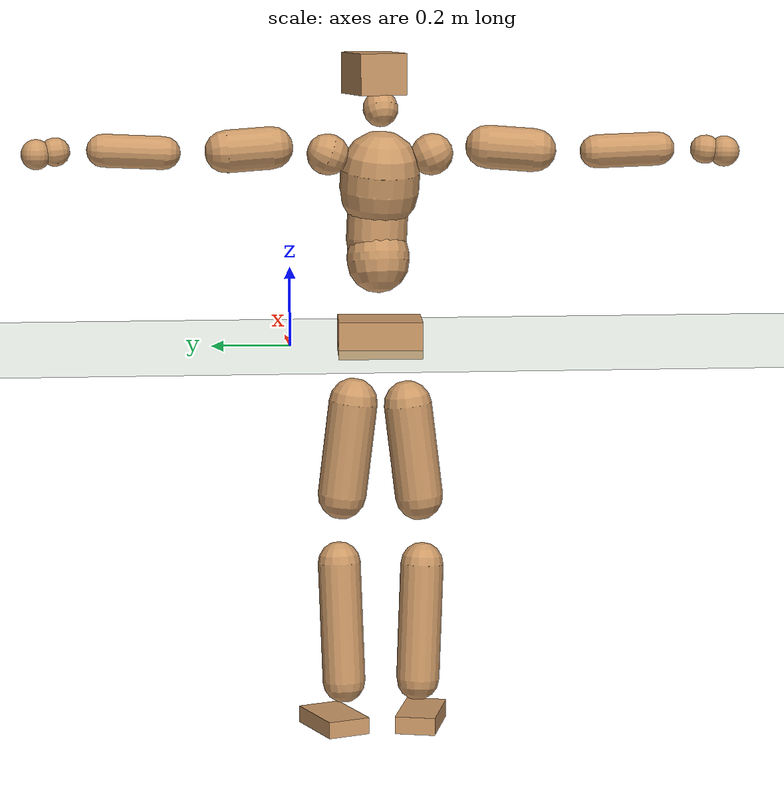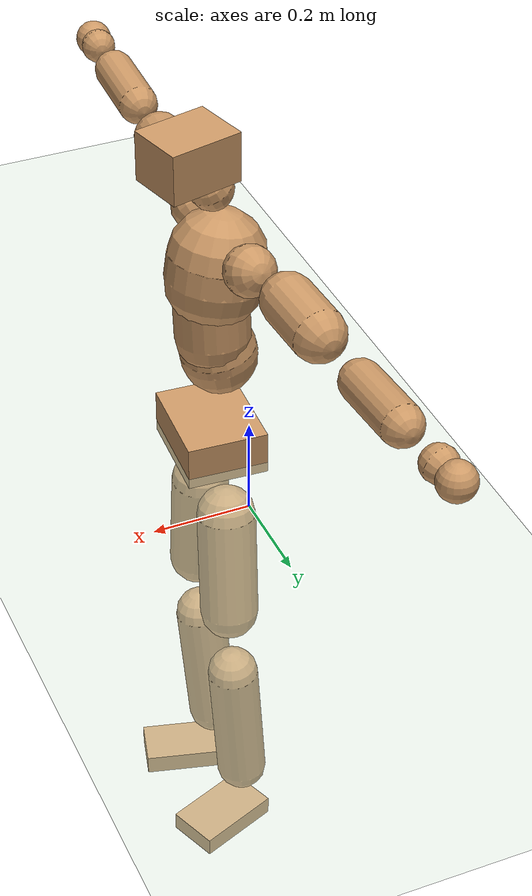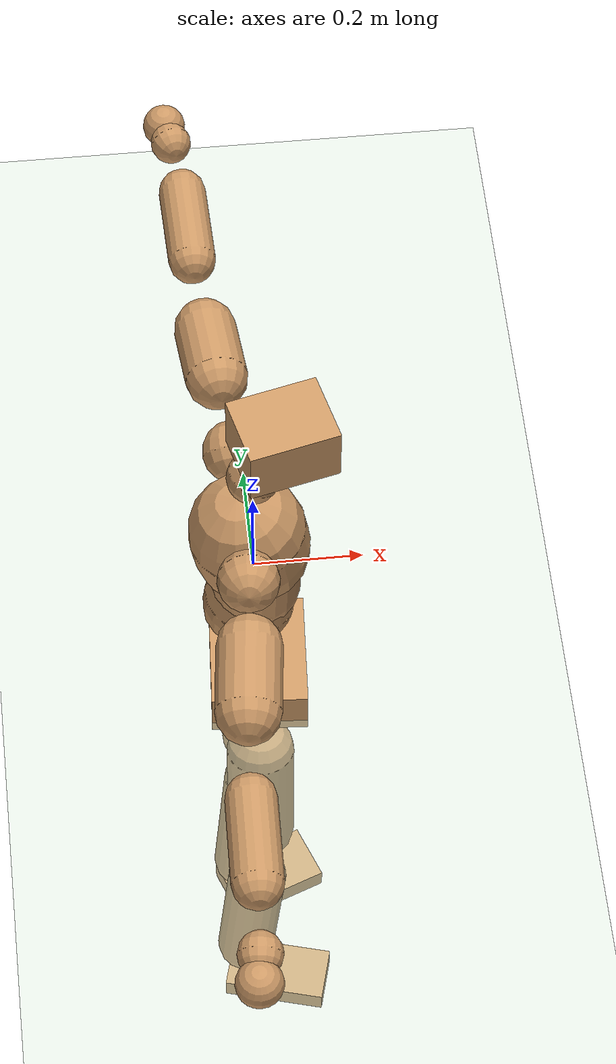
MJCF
<mujoco model="humanoid">
  <compiler coordinate="local" angle="radian"/>
  <default>
    <joint damping="0.0" armature="0.01" stiffness="0.0" limited="true"/>
    <geom conaffinity="1" condim="3" contype="7" margin="0.001" rgba="0.8 0.6 .4 1"/>
  </default>
  <asset>
    <texture type="skybox" builtin="gradient" rgb1=".4 .5 .6" rgb2="0 0 0" width="100" height="100"/>
    <texture builtin="flat" height="1278" mark="cross" markrgb="1 1 1" name="texgeom" random="0.01" rgb1="0.8 0.6 0.4" rgb2="0.8 0.6 0.4" type="cube" width="127"/>
    <texture builtin="checker" height="100" name="texplane" rgb1="0 0 0" rgb2="0.8 0.8 0.8" type="2d" width="100"/>
    <material name="MatPlane" reflectance="0.5" shininess="1" specular="1" texrepeat="60 60" texture="texplane"/>
    <material name="geom" texture="texgeom" texuniform="true"/>
  </asset>
  <worldbody>
    <light cutoff="100" diffuse="1 1 1" dir="-0 0 -1.3" directional="true" exponent="1" pos="0 0 1.3" specular=".1 .1 .1"/>
    <geom conaffinity="1" condim="3" name="floor" pos="0 0 0" rgba="0.8 0.9 0.8 1" size="100 100 .2" type="plane" material="MatPlane"/>
    <body name="Pelvis" pos="-0.0018 -0.2277 0.0297">
      <freejoint name="Pelvis"/>
      <geom type="box" contype="1" conaffinity="1" density="5359.374906" pos="-0.0117 0.0007 -0.0082" size="0.0842 0.1057 0.0466" quat="0.9996 0.0000 0.0000 -0.0296" name="Pelvis"/>
      <body name="L_Hip" pos="-0.0173 0.0584 -0.0835">
        <joint name="L_Hip_x" type="hinge" pos="0 0 0" axis="1 0 0" stiffness="1600" damping="160" armature="0.02" range="-180.0000 180.0000"/>
        <joint name="L_Hip_y" type="hinge" pos="0 0 0" axis="0 1 0" stiffness="1600" damping="160" armature="0.02" range="-180.0000 180.0000"/>
        <joint name="L_Hip_z" type="hinge" pos="0 0 0" axis="0 0 1" stiffness="1600" damping="160" armature="0.02" range="-180.0000 180.0000"/>
        <geom type="capsule" contype="1" conaffinity="1" density="2040.816327" size="0.0617" fromto="0.0024 0.0108 -0.0911 0.0089 0.0393 -0.3322" name="L_Hip"/>
        <body name="L_Knee" pos="0.0113 0.0501 -0.4232">
          <joint name="L_Knee_x" type="hinge" pos="0 0 0" axis="1 0 0" stiffness="1600" damping="160" armature="0.02" range="-180.0000 180.0000"/>
          <joint name="L_Knee_y" type="hinge" pos="0 0 0" axis="0 1 0" stiffness="1600" damping="160" armature="0.02" range="-180.0000 180.0000"/>
          <joint name="L_Knee_z" type="hinge" pos="0 0 0" axis="0 0 1" stiffness="1600" damping="160" armature="0.02" range="-180.0000 180.0000"/>
          <geom type="capsule" contype="1" conaffinity="1" density="1234.567901" size="0.0545" fromto="-0.0065 -0.0027 -0.0842 -0.0303 -0.0125 -0.3907" name="L_Knee"/>
          <body name="L_Ankle" pos="-0.0368 -0.0152 -0.4749">
            <joint name="L_Ankle_x" type="hinge" pos="0 0 0" axis="1 0 0" stiffness="1600" damping="160" armature="0.02" range="-180.0000 180.0000"/>
            <joint name="L_Ankle_y" type="hinge" pos="0 0 0" axis="0 1 0" stiffness="1600" damping="160" armature="0.02" range="-180.0000 180.0000"/>
            <joint name="L_Ankle_z" type="hinge" pos="0 0 0" axis="0 0 1" stiffness="1600" damping="160" armature="0.02" range="-180.0000 180.0000"/>
            <geom type="box" contype="1" conaffinity="1" density="999.999981" pos="0.0638 0.0245 -0.0328" size="0.0925 0.0562 0.0215" quat="0.9833 0.0000 0.0000 0.1821" name="L_Ankle"/>
            <body name="L_Toe" pos="0.1276 0.0489 -0.0656">
              <joint name="L_Toe_x" type="hinge" pos="0 0 0" axis="1 0 0" stiffness="1000" damping="100" armature="0.02" range="-180.0000 180.0000"/>
              <joint name="L_Toe_y" type="hinge" pos="0 0 0" axis="0 1 0" stiffness="1000" damping="100" armature="0.02" range="-180.0000 180.0000"/>
              <joint name="L_Toe_z" type="hinge" pos="0 0 0" axis="0 0 1" stiffness="1000" damping="100" armature="0.02" range="-180.0000 180.0000"/>
              <geom type="box" contype="1" conaffinity="1" density="8031442.561753" pos="0.0000 0.0000 0.0330" size="0.0011 0.0026 0.0011" quat="0.9825 0.0000 0.0000 0.1861" name="L_Toe"/>
            </body>
          </body>
        </body>
      </body>
      <body name="R_Hip" pos="-0.0132 -0.0592 -0.0925">
        <joint name="R_Hip_x" type="hinge" pos="0 0 0" axis="1 0 0" stiffness="1600" damping="160" armature="0.02" range="-180.0000 180.0000"/>
        <joint name="R_Hip_y" type="hinge" pos="0 0 0" axis="0 1 0" stiffness="1600" damping="160" armature="0.02" range="-180.0000 180.0000"/>
        <joint name="R_Hip_z" type="hinge" pos="0 0 0" axis="0 0 1" stiffness="1600" damping="160" armature="0.02" range="-180.0000 180.0000"/>
        <geom type="capsule" contype="1" conaffinity="1" density="2040.816327" size="0.0609" fromto="-0.0008 -0.0110 -0.0902 -0.0031 -0.0398 -0.3278" name="R_Hip"/>
        <body name="R_Knee" pos="-0.0039 -0.0507 -0.418">
          <joint name="R_Knee_x" type="hinge" pos="0 0 0" axis="1 0 0" stiffness="1600" damping="160" armature="0.02" range="-180.0000 180.0000"/>
          <joint name="R_Knee_y" type="hinge" pos="0 0 0" axis="0 1 0" stiffness="1600" damping="160" armature="0.02" range="-180.0000 180.0000"/>
          <joint name="R_Knee_z" type="hinge" pos="0 0 0" axis="0 0 1" stiffness="1600" damping="160" armature="0.02" range="-180.0000 180.0000"/>
          <geom type="capsule" contype="1" conaffinity="1" density="1234.567901" size="0.0549" fromto="-0.0063 0.0036 -0.0846 -0.0283 0.0163 -0.3818" name="R_Knee"/>
          <body name="R_Ankle" pos="-0.0346 0.02 -0.4664">
            <joint name="R_Ankle_x" type="hinge" pos="0 0 0" axis="1 0 0" stiffness="1600" damping="160" armature="0.02" range="-180.0000 180.0000"/>
            <joint name="R_Ankle_y" type="hinge" pos="0 0 0" axis="0 1 0" stiffness="1600" damping="160" armature="0.02" range="-180.0000 180.0000"/>
            <joint name="R_Ankle_z" type="hinge" pos="0 0 0" axis="0 0 1" stiffness="1600" damping="160" armature="0.02" range="-180.0000 180.0000"/>
            <geom type="box" contype="1" conaffinity="1" density="999.999975" pos="0.0688 -0.0185 -0.0334" size="0.0969 0.0519 0.0226" quat="0.9914 0.0000 0.0000 -0.1312" name="R_Ankle"/>
            <body name="R_Toe" pos="0.1377 -0.0371 -0.0667">
              <joint name="R_Toe_x" type="hinge" pos="0 0 0" axis="1 0 0" stiffness="1000" damping="100" armature="0.02" range="-180.0000 180.0000"/>
              <joint name="R_Toe_y" type="hinge" pos="0 0 0" axis="0 1 0" stiffness="1000" damping="100" armature="0.02" range="-180.0000 180.0000"/>
              <joint name="R_Toe_z" type="hinge" pos="0 0 0" axis="0 0 1" stiffness="1000" damping="100" armature="0.02" range="-180.0000 180.0000"/>
              <geom type="box" contype="1" conaffinity="1" density="8676836.118261" pos="0.0000 0.0000 0.0334" size="0.001 0.0025 0.0011" quat="0.9924 0.0000 0.0000 -0.1228" name="R_Toe"/>
            </body>
          </body>
        </body>
      </body>
      <body name="Torso" pos="-0.0398 0.0049 0.1271">
        <joint name="Torso_x" type="hinge" pos="0 0 0" axis="1 0 0" stiffness="2000" damping="200" armature="0.02" range="-180.0000 180.0000"/>
        <joint name="Torso_y" type="hinge" pos="0 0 0" axis="0 1 0" stiffness="2000" damping="200" armature="0.02" range="-180.0000 180.0000"/>
        <joint name="Torso_z" type="hinge" pos="0 0 0" axis="0 0 1" stiffness="2000" damping="200" armature="0.02" range="-180.0000 180.0000"/>
        <geom type="capsule" contype="1" conaffinity="1" density="2040.816327" size="0.0785" fromto="0.0150 0.0022 0.0770 0.0112 0.0017 0.0574" name="Torso"/>
        <body name="Spine" pos="0.0262 0.0039 0.1344">
          <joint name="Spine_x" type="hinge" pos="0 0 0" axis="1 0 0" stiffness="2000" damping="200" armature="0.02" range="-180.0000 180.0000"/>
          <joint name="Spine_y" type="hinge" pos="0 0 0" axis="0 1 0" stiffness="2000" damping="200" armature="0.02" range="-180.0000 180.0000"/>
          <joint name="Spine_z" type="hinge" pos="0 0 0" axis="0 0 1" stiffness="2000" damping="200" armature="0.02" range="-180.0000 180.0000"/>
          <geom type="capsule" contype="1" conaffinity="1" density="2040.816327" size="0.0769" fromto="0.0013 -0.0038 0.0768 -0.0004 0.0011 -0.0225" name="Spine"/>
          <body name="Chest" pos="0.0009 -0.0027 0.0543">
            <joint name="Chest_x" type="hinge" pos="0 0 0" axis="1 0 0" stiffness="2000" damping="200" armature="0.02" range="-180.0000 180.0000"/>
            <joint name="Chest_y" type="hinge" pos="0 0 0" axis="0 1 0" stiffness="2000" damping="200" armature="0.02" range="-180.0000 180.0000"/>
            <joint name="Chest_z" type="hinge" pos="0 0 0" axis="0 0 1" stiffness="2000" damping="200" armature="0.02" range="-180.0000 180.0000"/>
            <geom type="capsule" contype="1" conaffinity="1" density="2040.816327" size="0.0998" fromto="-0.0165 -0.0048 0.0983 -0.0081 -0.0023 0.0482" name="Chest"/>
            <body name="Neck" pos="-0.0304 -0.0116 0.2094">
              <joint name="Neck_x" type="hinge" pos="0 0 0" axis="1 0 0" stiffness="1000" damping="100" armature="0.02" range="-180.0000 180.0000"/>
              <joint name="Neck_y" type="hinge" pos="0 0 0" axis="0 1 0" stiffness="1000" damping="100" armature="0.02" range="-180.0000 180.0000"/>
              <joint name="Neck_z" type="hinge" pos="0 0 0" axis="0 0 1" stiffness="1000" damping="100" armature="0.02" range="-180.0000 180.0000"/>
              <geom type="capsule" contype="1" conaffinity="1" density="1000" size="0.0444" fromto="0.0240 0.0052 0.0415 0.0249 0.0054 0.0433" name="Neck"/>
              <body name="Head" pos="0.0489 0.0105 0.0848">
                <joint name="Head_x" type="hinge" pos="0 0 0" axis="1 0 0" stiffness="1000" damping="100" armature="0.02" range="-180.0000 180.0000"/>
                <joint name="Head_y" type="hinge" pos="0 0 0" axis="0 1 0" stiffness="1000" damping="100" armature="0.02" range="-180.0000 180.0000"/>
                <joint name="Head_z" type="hinge" pos="0 0 0" axis="0 0 1" stiffness="1000" damping="100" armature="0.02" range="-180.0000 180.0000"/>
                <geom type="box" contype="1" conaffinity="1" density="2250.000109" pos="0.0254 0.0063 0.0434" size="0.0772 0.0612 0.0519" quat="0.9927 0.0000 0.0000 0.1205" name="Head"/>
              </body>
            </body>
            <body name="L_Thorax" pos="-0.0201 0.0694 0.1161">
              <joint name="L_Thorax_x" type="hinge" pos="0 0 0" axis="1 0 0" stiffness="1000" damping="100" armature="0.02" range="-180.0000 180.0000"/>
              <joint name="L_Thorax_y" type="hinge" pos="0 0 0" axis="0 1 0" stiffness="1000" damping="100" armature="0.02" range="-180.0000 180.0000"/>
              <joint name="L_Thorax_z" type="hinge" pos="0 0 0" axis="0 0 1" stiffness="1000" damping="100" armature="0.02" range="-180.0000 180.0000"/>
              <geom type="capsule" contype="1" conaffinity="1" density="1000" size="0.0521" fromto="-0.0073 0.0573 0.0236 -0.0075 0.0592 0.0244" name="L_Thorax"/>
              <body name="L_Shoulder" pos="-0.0149 0.1165 0.048">
                <joint name="L_Shoulder_x" type="hinge" pos="0 0 0" axis="1 0 0" stiffness="1000" damping="100" armature="0.02" range="-720.0000 720.0000"/>
                <joint name="L_Shoulder_y" type="hinge" pos="0 0 0" axis="0 1 0" stiffness="1000" damping="100" armature="0.02" range="-720.0000 720.0000"/>
                <joint name="L_Shoulder_z" type="hinge" pos="0 0 0" axis="0 0 1" stiffness="1000" damping="100" armature="0.02" range="-720.0000 720.0000"/>
                <geom type="capsule" contype="1" conaffinity="1" density="1000" size="0.0537" fromto="-0.0072 0.0832 -0.0056 -0.0171 0.1960 -0.0132" name="L_Shoulder"/>
                <body name="L_Elbow" pos="-0.0243 0.2792 -0.0188">
                  <joint name="L_Elbow_x" type="hinge" pos="0 0 0" axis="1 0 0" stiffness="1000" damping="100" armature="0.02" range="-720.0000 720.0000"/>
                  <joint name="L_Elbow_y" type="hinge" pos="0 0 0" axis="0 1 0" stiffness="1000" damping="100" armature="0.02" range="-720.0000 720.0000"/>
                  <joint name="L_Elbow_z" type="hinge" pos="0 0 0" axis="0 0 1" stiffness="1000" damping="100" armature="0.02" range="-720.0000 720.0000"/>
                  <geom type="capsule" contype="1" conaffinity="1" density="1000" size="0.0413" fromto="-0.0022 0.0712 0.0035 -0.0070 0.2203 0.0108" name="L_Elbow"/>
                  <body name="L_Wrist" pos="-0.0092 0.2915 0.0143">
                    <joint name="L_Wrist_x" type="hinge" pos="0 0 0" axis="1 0 0" stiffness="600" damping="60" armature="0.02" range="-180.0000 180.0000"/>
                    <joint name="L_Wrist_y" type="hinge" pos="0 0 0" axis="0 1 0" stiffness="600" damping="60" armature="0.02" range="-180.0000 180.0000"/>
                    <joint name="L_Wrist_z" type="hinge" pos="0 0 0" axis="0 0 1" stiffness="600" damping="60" armature="0.02" range="-180.0000 180.0000"/>
                    <geom type="capsule" contype="1" conaffinity="1" density="1000" size="0.0356" fromto="-0.0084 0.0452 -0.0054 -0.0088 0.0471 -0.0056" name="L_Wrist"/>
                    <body name="L_Hand" pos="-0.0172 0.0923 -0.0109">
                      <joint name="L_Hand_x" type="hinge" pos="0 0 0" axis="1 0 0" stiffness="600" damping="60" armature="0.02" range="-180.0000 180.0000"/>
                      <joint name="L_Hand_y" type="hinge" pos="0 0 0" axis="0 1 0" stiffness="600" damping="60" armature="0.02" range="-180.0000 180.0000"/>
                      <joint name="L_Hand_z" type="hinge" pos="0 0 0" axis="0 0 1" stiffness="600" damping="60" armature="0.02" range="-180.0000 180.0000"/>
                      <geom type="sphere" contype="1" conaffinity="1" density="1000" size="0.0375" pos="0.0000 0.0000 0.0000" name="L_Hand"/>
                    </body>
                  </body>
                </body>
              </body>
            </body>
            <body name="R_Thorax" pos="-0.0233 -0.0791 0.114">
              <joint name="R_Thorax_x" type="hinge" pos="0 0 0" axis="1 0 0" stiffness="1000" damping="100" armature="0.02" range="-180.0000 180.0000"/>
              <joint name="R_Thorax_y" type="hinge" pos="0 0 0" axis="0 1 0" stiffness="1000" damping="100" armature="0.02" range="-180.0000 180.0000"/>
              <joint name="R_Thorax_z" type="hinge" pos="0 0 0" axis="0 0 1" stiffness="1000" damping="100" armature="0.02" range="-180.0000 180.0000"/>
              <geom type="capsule" contype="1" conaffinity="1" density="1000" size="0.0526" fromto="-0.0025 -0.0534 0.0244 -0.0026 -0.0552 0.0252" name="R_Thorax"/>
              <body name="R_Shoulder" pos="-0.0051 -0.1085 0.0496">
                <joint name="R_Shoulder_x" type="hinge" pos="0 0 0" axis="1 0 0" stiffness="1000" damping="100" armature="0.02" range="-720.0000 720.0000"/>
                <joint name="R_Shoulder_y" type="hinge" pos="0 0 0" axis="0 1 0" stiffness="1000" damping="100" armature="0.02" range="-720.0000 720.0000"/>
                <joint name="R_Shoulder_z" type="hinge" pos="0 0 0" axis="0 0 1" stiffness="1000" damping="100" armature="0.02" range="-720.0000 720.0000"/>
                <geom type="capsule" contype="1" conaffinity="1" density="1000" size="0.0549" fromto="-0.0089 -0.0842 -0.0061 -0.0212 -0.2008 -0.0146" name="R_Shoulder"/>
                <body name="R_Elbow" pos="-0.0301 -0.285 -0.0207">
                  <joint name="R_Elbow_x" type="hinge" pos="0 0 0" axis="1 0 0" stiffness="1000" damping="100" armature="0.02" range="-720.0000 720.0000"/>
                  <joint name="R_Elbow_y" type="hinge" pos="0 0 0" axis="0 1 0" stiffness="1000" damping="100" armature="0.02" range="-720.0000 720.0000"/>
                  <joint name="R_Elbow_z" type="hinge" pos="0 0 0" axis="0 0 1" stiffness="1000" damping="100" armature="0.02" range="-720.0000 720.0000"/>
                  <geom type="capsule" contype="1" conaffinity="1" density="1000" size="0.042" fromto="-0.0019 -0.0719 0.0028 -0.0060 -0.2260 0.0090" name="R_Elbow"/>
                  <body name="R_Wrist" pos="-0.0079 -0.298 0.0118">
                    <joint name="R_Wrist_x" type="hinge" pos="0 0 0" axis="1 0 0" stiffness="600" damping="60" armature="0.02" range="-180.0000 180.0000"/>
                    <joint name="R_Wrist_y" type="hinge" pos="0 0 0" axis="0 1 0" stiffness="600" damping="60" armature="0.02" range="-180.0000 180.0000"/>
                    <joint name="R_Wrist_z" type="hinge" pos="0 0 0" axis="0 0 1" stiffness="600" damping="60" armature="0.02" range="-180.0000 180.0000"/>
                    <geom type="capsule" contype="1" conaffinity="1" density="1000" size="0.0364" fromto="-0.0055 -0.0464 -0.0044 -0.0057 -0.0483 -0.0046" name="R_Wrist"/>
                    <body name="R_Hand" pos="-0.0112 -0.0947 -0.0091">
                      <joint name="R_Hand_x" type="hinge" pos="0 0 0" axis="1 0 0" stiffness="600" damping="60" armature="0.02" range="-180.0000 180.0000"/>
                      <joint name="R_Hand_y" type="hinge" pos="0 0 0" axis="0 1 0" stiffness="600" damping="60" armature="0.02" range="-180.0000 180.0000"/>
                      <joint name="R_Hand_z" type="hinge" pos="0 0 0" axis="0 0 1" stiffness="600" damping="60" armature="0.02" range="-180.0000 180.0000"/>
                      <geom type="sphere" contype="1" conaffinity="1" density="1000" size="0.0383" pos="0.0000 0.0000 0.0000" name="R_Hand"/>
                    </body>
                  </body>
                </body>
              </body>
            </body>
          </body>
        </body>
      </body>
    </body>
  </worldbody>
  <actuator>
    <motor name="L_Hip_x" joint="L_Hip_x" gear="500"/>
    <motor name="L_Hip_y" joint="L_Hip_y" gear="500"/>
    <motor name="L_Hip_z" joint="L_Hip_z" gear="500"/>
    <motor name="L_Knee_x" joint="L_Knee_x" gear="500"/>
    <motor name="L_Knee_y" joint="L_Knee_y" gear="500"/>
    <motor name="L_Knee_z" joint="L_Knee_z" gear="500"/>
    <motor name="L_Ankle_x" joint="L_Ankle_x" gear="500"/>
    <motor name="L_Ankle_y" joint="L_Ankle_y" gear="500"/>
    <motor name="L_Ankle_z" joint="L_Ankle_z" gear="500"/>
    <motor name="L_Toe_x" joint="L_Toe_x" gear="500"/>
    <motor name="L_Toe_y" joint="L_Toe_y" gear="500"/>
    <motor name="L_Toe_z" joint="L_Toe_z" gear="500"/>
    <motor name="R_Hip_x" joint="R_Hip_x" gear="500"/>
    <motor name="R_Hip_y" joint="R_Hip_y" gear="500"/>
    <motor name="R_Hip_z" joint="R_Hip_z" gear="500"/>
    <motor name="R_Knee_x" joint="R_Knee_x" gear="500"/>
    <motor name="R_Knee_y" joint="R_Knee_y" gear="500"/>
    <motor name="R_Knee_z" joint="R_Knee_z" gear="500"/>
    <motor name="R_Ankle_x" joint="R_Ankle_x" gear="500"/>
    <motor name="R_Ankle_y" joint="R_Ankle_y" gear="500"/>
    <motor name="R_Ankle_z" joint="R_Ankle_z" gear="500"/>
    <motor name="R_Toe_x" joint="R_Toe_x" gear="500"/>
    <motor name="R_Toe_y" joint="R_Toe_y" gear="500"/>
    <motor name="R_Toe_z" joint="R_Toe_z" gear="500"/>
    <motor name="Torso_x" joint="Torso_x" gear="500"/>
    <motor name="Torso_y" joint="Torso_y" gear="500"/>
    <motor name="Torso_z" joint="Torso_z" gear="500"/>
    <motor name="Spine_x" joint="Spine_x" gear="500"/>
    <motor name="Spine_y" joint="Spine_y" gear="500"/>
    <motor name="Spine_z" joint="Spine_z" gear="500"/>
    <motor name="Chest_x" joint="Chest_x" gear="500"/>
    <motor name="Chest_y" joint="Chest_y" gear="500"/>
    <motor name="Chest_z" joint="Chest_z" gear="500"/>
    <motor name="Neck_x" joint="Neck_x" gear="500"/>
    <motor name="Neck_y" joint="Neck_y" gear="500"/>
    <motor name="Neck_z" joint="Neck_z" gear="500"/>
    <motor name="Head_x" joint="Head_x" gear="500"/>
    <motor name="Head_y" joint="Head_y" gear="500"/>
    <motor name="Head_z" joint="Head_z" gear="500"/>
    <motor name="L_Thorax_x" joint="L_Thorax_x" gear="500"/>
    <motor name="L_Thorax_y" joint="L_Thorax_y" gear="500"/>
    <motor name="L_Thorax_z" joint="L_Thorax_z" gear="500"/>
    <motor name="L_Shoulder_x" joint="L_Shoulder_x" gear="500"/>
    <motor name="L_Shoulder_y" joint="L_Shoulder_y" gear="500"/>
    <motor name="L_Shoulder_z" joint="L_Shoulder_z" gear="500"/>
    <motor name="L_Elbow_x" joint="L_Elbow_x" gear="500"/>
    <motor name="L_Elbow_y" joint="L_Elbow_y" gear="500"/>
    <motor name="L_Elbow_z" joint="L_Elbow_z" gear="500"/>
    <motor name="L_Wrist_x" joint="L_Wrist_x" gear="500"/>
    <motor name="L_Wrist_y" joint="L_Wrist_y" gear="500"/>
    <motor name="L_Wrist_z" joint="L_Wrist_z" gear="500"/>
    <motor name="L_Hand_x" joint="L_Hand_x" gear="500"/>
    <motor name="L_Hand_y" joint="L_Hand_y" gear="500"/>
    <motor name="L_Hand_z" joint="L_Hand_z" gear="500"/>
    <motor name="R_Thorax_x" joint="R_Thorax_x" gear="500"/>
    <motor name="R_Thorax_y" joint="R_Thorax_y" gear="500"/>
    <motor name="R_Thorax_z" joint="R_Thorax_z" gear="500"/>
    <motor name="R_Shoulder_x" joint="R_Shoulder_x" gear="500"/>
    <motor name="R_Shoulder_y" joint="R_Shoulder_y" gear="500"/>
    <motor name="R_Shoulder_z" joint="R_Shoulder_z" gear="500"/>
    <motor name="R_Elbow_x" joint="R_Elbow_x" gear="500"/>
    <motor name="R_Elbow_y" joint="R_Elbow_y" gear="500"/>
    <motor name="R_Elbow_z" joint="R_Elbow_z" gear="500"/>
    <motor name="R_Wrist_x" joint="R_Wrist_x" gear="500"/>
    <motor name="R_Wrist_y" joint="R_Wrist_y" gear="500"/>
    <motor name="R_Wrist_z" joint="R_Wrist_z" gear="500"/>
    <motor name="R_Hand_x" joint="R_Hand_x" gear="500"/>
    <motor name="R_Hand_y" joint="R_Hand_y" gear="500"/>
    <motor name="R_Hand_z" joint="R_Hand_z" gear="500"/>
  </actuator>
  <contact>
    <exclude body1="Torso" body2="Chest"/>
    <exclude body1="Head" body2="Chest"/>
    <exclude body1="R_Knee" body2="R_Toe"/>
    <exclude body1="R_Knee" body2="L_Ankle"/>
    <exclude body1="R_Knee" body2="L_Toe"/>
    <exclude body1="L_Knee" body2="L_Toe"/>
    <exclude body1="L_Knee" body2="R_Ankle"/>
    <exclude body1="L_Knee" body2="R_Toe"/>
    <exclude body1="L_Shoulder" body2="Chest"/>
    <exclude body1="R_Shoulder" body2="Chest"/>
  </contact>
  <sensor/>
  <size njmax="700" nconmax="700"/>
</mujoco>
